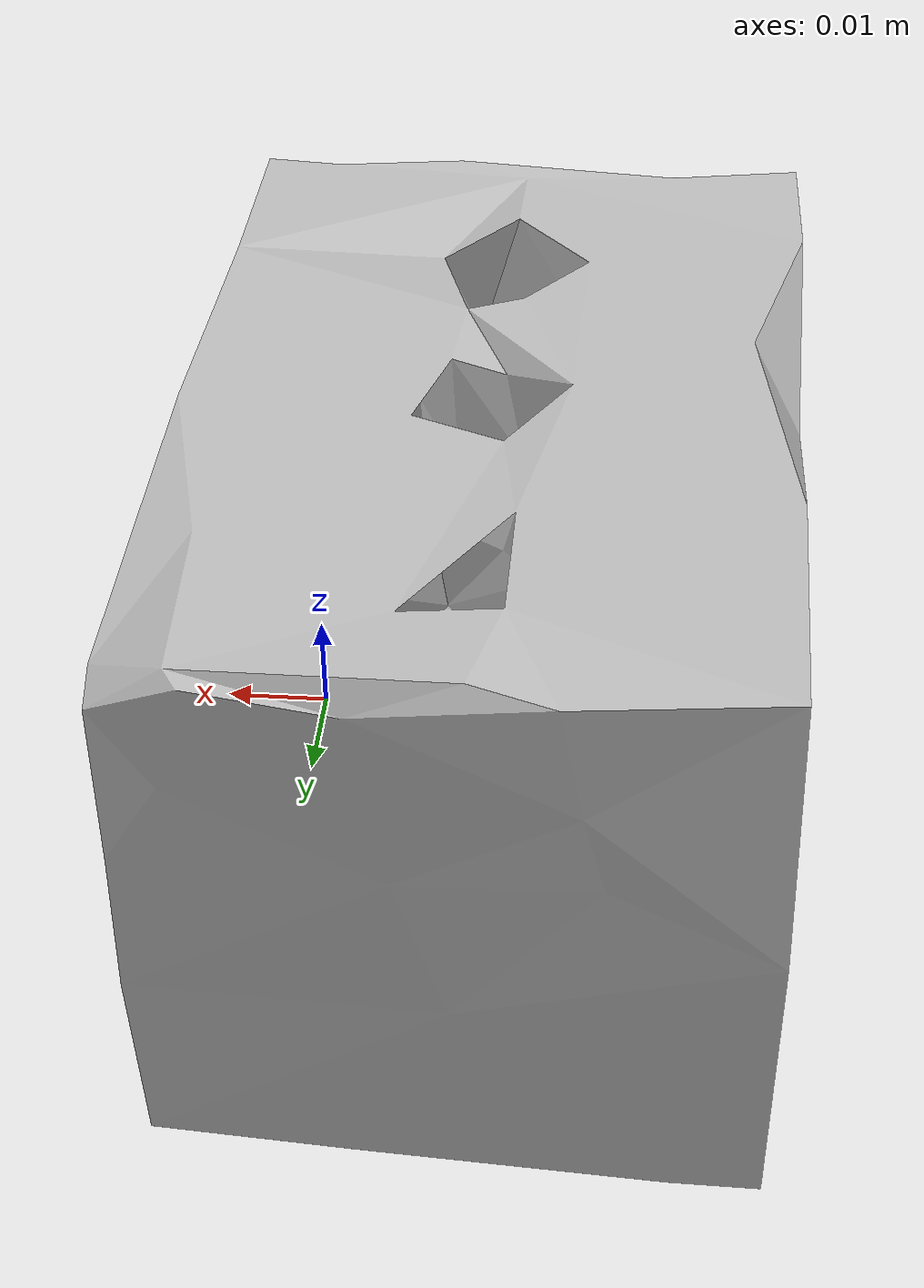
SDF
<?xml version='1.0'?>
<sdf version="1.4">
  <model name="061_foam_brick">
    <static>false</static>
    <link name="link">
      <inertial>
        <pose>-0.018622082349490456 0.01697343503688655 0.025103592332034876 -1.8923531226503747 -1.508121869760107 0.3065780518591834</pose>
        <mass>0.01974071417816017</mass>
        <inertia>
          <ixx>1.3782117990871366e-05</ixx>
          <ixy>-1.7306261981629353e-22</ixy>
          <ixz>-8.0424095986196315e-22</ixz>
          <iyy>1.3642174427853515e-05</iyy>
          <iyz>-5.230545361838832e-23</iyz>
          <izz>8.51613488977335e-06</izz>
        </inertia>
      </inertial>
      <collision name="collision">
        <geometry>
          <mesh>
            <!-- Use a downsampled mesh for collisions -->
            <uri>model:///061_foam_brick/061_foam_brick_250_collision.stl</uri>
	        </mesh>
        </geometry>
        <surface>
      </surface>
      </collision>
      <visual name="visual">
        <geometry>
          <mesh>
            <uri>model:///061_foam_brick/textured.obj</uri>
	        </mesh>
        </geometry>
        <material>
          <script>
            <uri>model:///061_foam_brick/061_foam_brick.material</uri>
            <name>061_foam_brick</name>
          </script>
        </material>
      </visual>
    </link>
  </model>
</sdf>
